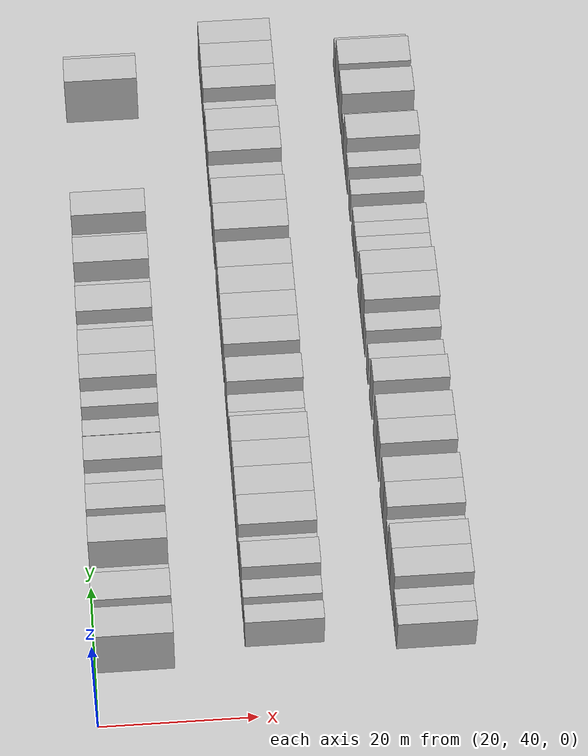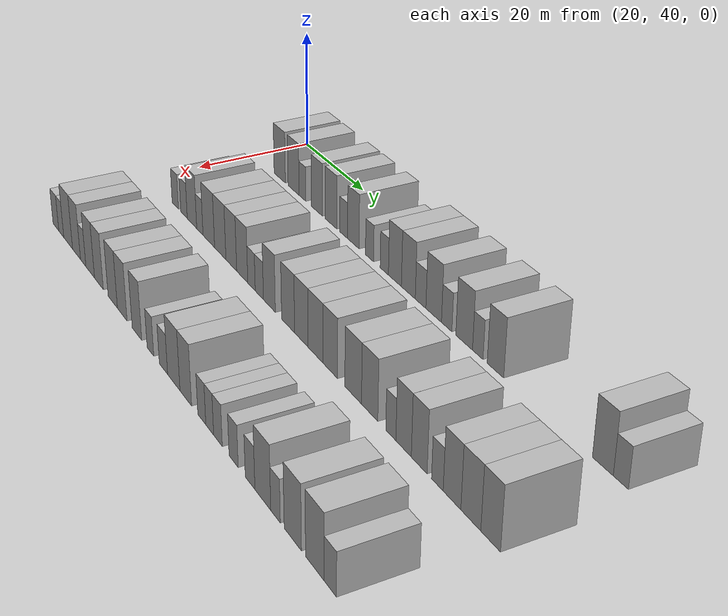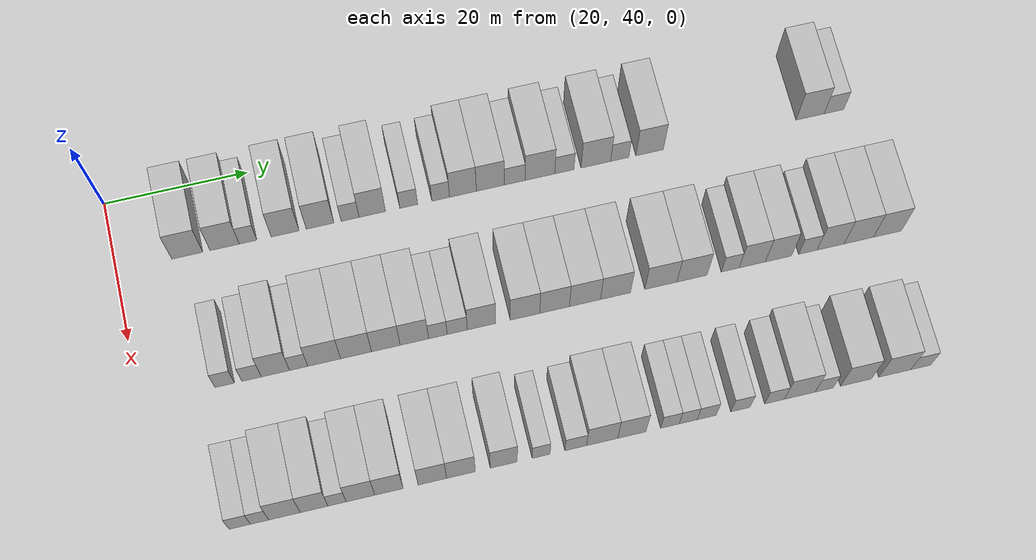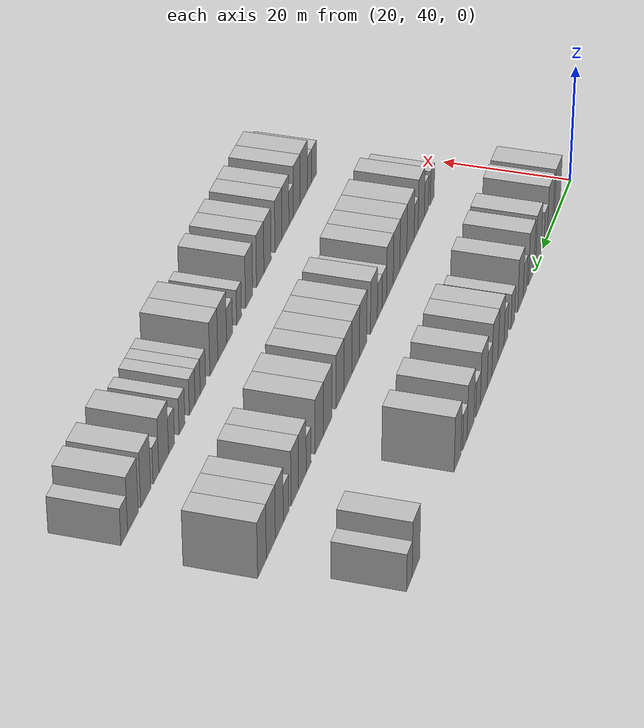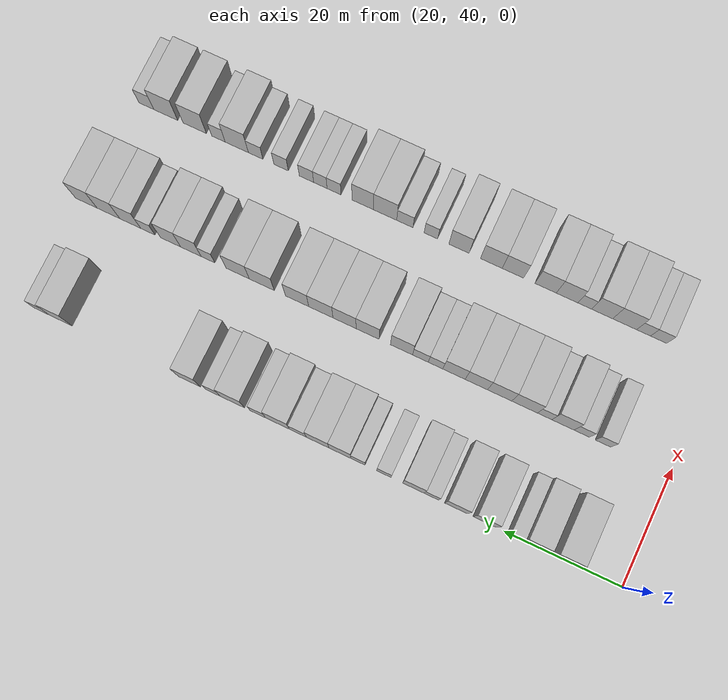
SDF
<sdf version="1.6">
 <world name="default">
  <model name="building_65">
   <static>1</static>
   <pose>25.0000 49.7937 0 0.000000 0.000000 0.000000</pose>
   <link name="link">
    <pose>0 0 4.50 0 0 0</pose>
    <collision name="collision"><geometry><box><size>10.0000 4.2686 9.0000</size></box></geometry></collision>
    <visual name="visual">
     <cast_shadows>0</cast_shadows>
     <geometry><box><size>10.0000 4.2686 9.0000</size></box></geometry>
     <material>
      <script>
       <uri>model://HANNAS_wall/materials/scripts</uri>
       <uri>model://HANNAS_wall/materials/textures</uri>
       <name>vrc/HANNAS_wall</name>
      </script>
     </material>
    </visual>
   </link>
  </model>
  <model name="building_66">
   <static>1</static>
   <pose>25.0000 54.9420 0 0.000000 0.000000 0.000000</pose>
   <link name="link">
    <pose>0 0 4.50 0 0 0</pose>
    <collision name="collision"><geometry><box><size>10.0000 4.0281 9.0000</size></box></geometry></collision>
    <visual name="visual">
     <cast_shadows>0</cast_shadows>
     <geometry><box><size>10.0000 4.0281 9.0000</size></box></geometry>
     <material>
      <script>
       <uri>model://HANNAS_wall/materials/scripts</uri>
       <uri>model://HANNAS_wall/materials/textures</uri>
       <name>vrc/HANNAS_wall</name>
      </script>
     </material>
    </visual>
   </link>
  </model>
  <model name="building_67">
   <static>1</static>
   <pose>25.0000 58.1628 0 0.000000 0.000000 0.000000</pose>
   <link name="link">
    <pose>0 0 3.00 0 0 0</pose>
    <collision name="collision"><geometry><box><size>10.0000 2.4135 6.0000</size></box></geometry></collision>
    <visual name="visual">
     <cast_shadows>0</cast_shadows>
     <geometry><box><size>10.0000 2.4135 6.0000</size></box></geometry>
     <material>
      <script>
       <uri>model://HANNAS_wall/materials/scripts</uri>
       <uri>model://HANNAS_wall/materials/textures</uri>
       <name>vrc/HANNAS_wall</name>
      </script>
     </material>
    </visual>
   </link>
  </model>
  <model name="building_68">
   <static>1</static>
   <pose>25.0000 63.2916 0 0.000000 0.000000 0.000000</pose>
   <link name="link">
    <pose>0 0 4.50 0 0 0</pose>
    <collision name="collision"><geometry><box><size>10.0000 3.8443 9.0000</size></box></geometry></collision>
    <visual name="visual">
     <cast_shadows>0</cast_shadows>
     <geometry><box><size>10.0000 3.8443 9.0000</size></box></geometry>
     <material>
      <script>
       <uri>model://HANNAS_wall/materials/scripts</uri>
       <uri>model://HANNAS_wall/materials/textures</uri>
       <name>vrc/HANNAS_wall</name>
      </script>
     </material>
    </visual>
   </link>
  </model>
  <model name="building_69">
   <static>1</static>
   <pose>25.0000 68.1384 0 0.000000 0.000000 0.000000</pose>
   <link name="link">
    <pose>0 0 4.50 0 0 0</pose>
    <collision name="collision"><geometry><box><size>10.0000 3.8493 9.0000</size></box></geometry></collision>
    <visual name="visual">
     <cast_shadows>0</cast_shadows>
     <geometry><box><size>10.0000 3.8493 9.0000</size></box></geometry>
     <material>
      <script>
       <uri>model://HANNAS_wall/materials/scripts</uri>
       <uri>model://HANNAS_wall/materials/textures</uri>
       <name>vrc/HANNAS_wall</name>
      </script>
     </material>
    </visual>
   </link>
  </model>
  <model name="building_70">
   <static>1</static>
   <pose>25.0000 72.3143 0 0.000000 0.000000 0.000000</pose>
   <link name="link">
    <pose>0 0 3.00 0 0 0</pose>
    <collision name="collision"><geometry><box><size>10.0000 2.5026 6.0000</size></box></geometry></collision>
    <visual name="visual">
     <cast_shadows>0</cast_shadows>
     <geometry><box><size>10.0000 2.5026 6.0000</size></box></geometry>
     <material>
      <script>
       <uri>model://HANNAS_wall/materials/scripts</uri>
       <uri>model://HANNAS_wall/materials/textures</uri>
       <name>vrc/HANNAS_wall</name>
      </script>
     </material>
    </visual>
   </link>
  </model>
  <model name="building_71">
   <static>1</static>
   <pose>25.0000 75.4090 0 0.000000 0.000000 0.000000</pose>
   <link name="link">
    <pose>0 0 4.50 0 0 0</pose>
    <collision name="collision"><geometry><box><size>10.0000 3.6867 9.0000</size></box></geometry></collision>
    <visual name="visual">
     <cast_shadows>0</cast_shadows>
     <geometry><box><size>10.0000 3.6867 9.0000</size></box></geometry>
     <material>
      <script>
       <uri>model://HANNAS_wall/materials/scripts</uri>
       <uri>model://HANNAS_wall/materials/textures</uri>
       <name>vrc/HANNAS_wall</name>
      </script>
     </material>
    </visual>
   </link>
  </model>
  <model name="building_72">
   <static>1</static>
   <pose>25.0000 80.4976 0 0.000000 0.000000 0.000000</pose>
   <link name="link">
    <pose>0 0 3.00 0 0 0</pose>
    <collision name="collision"><geometry><box><size>10.0000 2.4904 6.0000</size></box></geometry></collision>
    <visual name="visual">
     <cast_shadows>0</cast_shadows>
     <geometry><box><size>10.0000 2.4904 6.0000</size></box></geometry>
     <material>
      <script>
       <uri>model://HANNAS_wall/materials/scripts</uri>
       <uri>model://HANNAS_wall/materials/textures</uri>
       <name>vrc/HANNAS_wall</name>
      </script>
     </material>
    </visual>
   </link>
  </model>
  <model name="building_73">
   <static>1</static>
   <pose>25.0000 84.9748 0 0.000000 0.000000 0.000000</pose>
   <link name="link">
    <pose>0 0 3.00 0 0 0</pose>
    <collision name="collision"><geometry><box><size>10.0000 2.4641 6.0000</size></box></geometry></collision>
    <visual name="visual">
     <cast_shadows>0</cast_shadows>
     <geometry><box><size>10.0000 2.4641 6.0000</size></box></geometry>
     <material>
      <script>
       <uri>model://HANNAS_wall/materials/scripts</uri>
       <uri>model://HANNAS_wall/materials/textures</uri>
       <name>vrc/HANNAS_wall</name>
      </script>
     </material>
    </visual>
   </link>
  </model>
  <model name="building_74">
   <static>1</static>
   <pose>25.0000 88.0929 0 0.000000 0.000000 0.000000</pose>
   <link name="link">
    <pose>0 0 4.50 0 0 0</pose>
    <collision name="collision"><geometry><box><size>10.0000 3.7721 9.0000</size></box></geometry></collision>
    <visual name="visual">
     <cast_shadows>0</cast_shadows>
     <geometry><box><size>10.0000 3.7721 9.0000</size></box></geometry>
     <material>
      <script>
       <uri>model://HANNAS_wall/materials/scripts</uri>
       <uri>model://HANNAS_wall/materials/textures</uri>
       <name>vrc/HANNAS_wall</name>
      </script>
     </material>
    </visual>
   </link>
  </model>
  <model name="building_75">
   <static>1</static>
   <pose>25.0000 91.9457 0 0.000000 0.000000 0.000000</pose>
   <link name="link">
    <pose>0 0 4.50 0 0 0</pose>
    <collision name="collision"><geometry><box><size>10.0000 3.9336 9.0000</size></box></geometry></collision>
    <visual name="visual">
     <cast_shadows>0</cast_shadows>
     <geometry><box><size>10.0000 3.9336 9.0000</size></box></geometry>
     <material>
      <script>
       <uri>model://HANNAS_wall/materials/scripts</uri>
       <uri>model://HANNAS_wall/materials/textures</uri>
       <name>vrc/HANNAS_wall</name>
      </script>
     </material>
    </visual>
   </link>
  </model>
  <model name="building_76">
   <static>1</static>
   <pose>25.0000 95.3785 0 0.000000 0.000000 0.000000</pose>
   <link name="link">
    <pose>0 0 3.00 0 0 0</pose>
    <collision name="collision"><geometry><box><size>10.0000 2.9320 6.0000</size></box></geometry></collision>
    <visual name="visual">
     <cast_shadows>0</cast_shadows>
     <geometry><box><size>10.0000 2.9320 6.0000</size></box></geometry>
     <material>
      <script>
       <uri>model://HANNAS_wall/materials/scripts</uri>
       <uri>model://HANNAS_wall/materials/textures</uri>
       <name>vrc/HANNAS_wall</name>
      </script>
     </material>
    </visual>
   </link>
  </model>
  <model name="building_77">
   <static>1</static>
   <pose>25.0000 98.9359 0 0.000000 0.000000 0.000000</pose>
   <link name="link">
    <pose>0 0 4.50 0 0 0</pose>
    <collision name="collision"><geometry><box><size>10.0000 4.1828 9.0000</size></box></geometry></collision>
    <visual name="visual">
     <cast_shadows>0</cast_shadows>
     <geometry><box><size>10.0000 4.1828 9.0000</size></box></geometry>
     <material>
      <script>
       <uri>model://HANNAS_wall/materials/scripts</uri>
       <uri>model://HANNAS_wall/materials/textures</uri>
       <name>vrc/HANNAS_wall</name>
      </script>
     </material>
    </visual>
   </link>
  </model>
  <model name="building_78">
   <static>1</static>
   <pose>25.0000 102.3934 0 0.000000 0.000000 0.000000</pose>
   <link name="link">
    <pose>0 0 3.00 0 0 0</pose>
    <collision name="collision"><geometry><box><size>10.0000 2.7321 6.0000</size></box></geometry></collision>
    <visual name="visual">
     <cast_shadows>0</cast_shadows>
     <geometry><box><size>10.0000 2.7321 6.0000</size></box></geometry>
     <material>
      <script>
       <uri>model://HANNAS_wall/materials/scripts</uri>
       <uri>model://HANNAS_wall/materials/textures</uri>
       <name>vrc/HANNAS_wall</name>
      </script>
     </material>
    </visual>
   </link>
  </model>
  <model name="building_79">
   <static>1</static>
   <pose>25.0000 106.8667 0 0.000000 0.000000 0.000000</pose>
   <link name="link">
    <pose>0 0 4.50 0 0 0</pose>
    <collision name="collision"><geometry><box><size>10.0000 4.2146 9.0000</size></box></geometry></collision>
    <visual name="visual">
     <cast_shadows>0</cast_shadows>
     <geometry><box><size>10.0000 4.2146 9.0000</size></box></geometry>
     <material>
      <script>
       <uri>model://HANNAS_wall/materials/scripts</uri>
       <uri>model://HANNAS_wall/materials/textures</uri>
       <name>vrc/HANNAS_wall</name>
      </script>
     </material>
    </visual>
   </link>
  </model>
  <model name="building_80">
   <static>1</static>
   <pose>25.0000 110.2658 0 0.000000 0.000000 0.000000</pose>
   <link name="link">
    <pose>0 0 3.00 0 0 0</pose>
    <collision name="collision"><geometry><box><size>10.0000 2.5836 6.0000</size></box></geometry></collision>
    <visual name="visual">
     <cast_shadows>0</cast_shadows>
     <geometry><box><size>10.0000 2.5836 6.0000</size></box></geometry>
     <material>
      <script>
       <uri>model://HANNAS_wall/materials/scripts</uri>
       <uri>model://HANNAS_wall/materials/textures</uri>
       <name>vrc/HANNAS_wall</name>
      </script>
     </material>
    </visual>
   </link>
  </model>
  <model name="building_81">
   <static>1</static>
   <pose>25.0000 114.5199 0 0.000000 0.000000 0.000000</pose>
   <link name="link">
    <pose>0 0 4.50 0 0 0</pose>
    <collision name="collision"><geometry><box><size>10.0000 3.9246 9.0000</size></box></geometry></collision>
    <visual name="visual">
     <cast_shadows>0</cast_shadows>
     <geometry><box><size>10.0000 3.9246 9.0000</size></box></geometry>
     <material>
      <script>
       <uri>model://HANNAS_wall/materials/scripts</uri>
       <uri>model://HANNAS_wall/materials/textures</uri>
       <name>vrc/HANNAS_wall</name>
      </script>
     </material>
    </visual>
   </link>
  </model>
  <model name="building_82">
   <static>1</static>
   <pose>25.0000 137.5602 0 0.000000 0.000000 0.000000</pose>
   <link name="link">
    <pose>0 0 4.50 0 0 0</pose>
    <collision name="collision"><geometry><box><size>10.0000 4.0520 9.0000</size></box></geometry></collision>
    <visual name="visual">
     <cast_shadows>0</cast_shadows>
     <geometry><box><size>10.0000 4.0520 9.0000</size></box></geometry>
     <material>
      <script>
       <uri>model://HANNAS_wall/materials/scripts</uri>
       <uri>model://HANNAS_wall/materials/textures</uri>
       <name>vrc/HANNAS_wall</name>
      </script>
     </material>
    </visual>
   </link>
  </model>
  <model name="building_83">
   <static>1</static>
   <pose>25.0000 141.0171 0 0.000000 0.000000 0.000000</pose>
   <link name="link">
    <pose>0 0 3.00 0 0 0</pose>
    <collision name="collision"><geometry><box><size>10.0000 2.8619 6.0000</size></box></geometry></collision>
    <visual name="visual">
     <cast_shadows>0</cast_shadows>
     <geometry><box><size>10.0000 2.8619 6.0000</size></box></geometry>
     <material>
      <script>
       <uri>model://HANNAS_wall/materials/scripts</uri>
       <uri>model://HANNAS_wall/materials/textures</uri>
       <name>vrc/HANNAS_wall</name>
      </script>
     </material>
    </visual>
   </link>
  </model>
  <model name="building_164">
   <static>1</static>
   <pose>44.0000 51.3973 0 0.000000 0.000000 0.000000</pose>
   <link name="link">
    <pose>0 0 3.00 0 0 0</pose>
    <collision name="collision"><geometry><box><size>10.0000 2.6188 6.0000</size></box></geometry></collision>
    <visual name="visual">
     <cast_shadows>0</cast_shadows>
     <geometry><box><size>10.0000 2.6188 6.0000</size></box></geometry>
     <material>
      <script>
       <uri>model://HANNAS_wall/materials/scripts</uri>
       <uri>model://HANNAS_wall/materials/textures</uri>
       <name>vrc/HANNAS_wall</name>
      </script>
     </material>
    </visual>
   </link>
  </model>
  <model name="building_165">
   <static>1</static>
   <pose>44.0000 55.0217 0 0.000000 0.000000 0.000000</pose>
   <link name="link">
    <pose>0 0 3.00 0 0 0</pose>
    <collision name="collision"><geometry><box><size>10.0000 2.6300 6.0000</size></box></geometry></collision>
    <visual name="visual">
     <cast_shadows>0</cast_shadows>
     <geometry><box><size>10.0000 2.6300 6.0000</size></box></geometry>
     <material>
      <script>
       <uri>model://HANNAS_wall/materials/scripts</uri>
       <uri>model://HANNAS_wall/materials/textures</uri>
       <name>vrc/HANNAS_wall</name>
      </script>
     </material>
    </visual>
   </link>
  </model>
  <model name="building_166">
   <static>1</static>
   <pose>44.0000 58.2361 0 0.000000 0.000000 0.000000</pose>
   <link name="link">
    <pose>0 0 4.50 0 0 0</pose>
    <collision name="collision"><geometry><box><size>10.0000 3.7986 9.0000</size></box></geometry></collision>
    <visual name="visual">
     <cast_shadows>0</cast_shadows>
     <geometry><box><size>10.0000 3.7986 9.0000</size></box></geometry>
     <material>
      <script>
       <uri>model://HANNAS_wall/materials/scripts</uri>
       <uri>model://HANNAS_wall/materials/textures</uri>
       <name>vrc/HANNAS_wall</name>
      </script>
     </material>
    </visual>
   </link>
  </model>
  <model name="building_167">
   <static>1</static>
   <pose>44.0000 61.3691 0 0.000000 0.000000 0.000000</pose>
   <link name="link">
    <pose>0 0 3.00 0 0 0</pose>
    <collision name="collision"><geometry><box><size>10.0000 2.4675 6.0000</size></box></geometry></collision>
    <visual name="visual">
     <cast_shadows>0</cast_shadows>
     <geometry><box><size>10.0000 2.4675 6.0000</size></box></geometry>
     <material>
      <script>
       <uri>model://HANNAS_wall/materials/scripts</uri>
       <uri>model://HANNAS_wall/materials/textures</uri>
       <name>vrc/HANNAS_wall</name>
      </script>
     </material>
    </visual>
   </link>
  </model>
  <model name="building_168">
   <static>1</static>
   <pose>44.0000 64.8277 0 0.000000 0.000000 0.000000</pose>
   <link name="link">
    <pose>0 0 4.50 0 0 0</pose>
    <collision name="collision"><geometry><box><size>10.0000 4.4498 9.0000</size></box></geometry></collision>
    <visual name="visual">
     <cast_shadows>0</cast_shadows>
     <geometry><box><size>10.0000 4.4498 9.0000</size></box></geometry>
     <material>
      <script>
       <uri>model://HANNAS_wall/materials/scripts</uri>
       <uri>model://HANNAS_wall/materials/textures</uri>
       <name>vrc/HANNAS_wall</name>
      </script>
     </material>
    </visual>
   </link>
  </model>
  <model name="building_169">
   <static>1</static>
   <pose>44.0000 69.1549 0 0.000000 0.000000 0.000000</pose>
   <link name="link">
    <pose>0 0 4.50 0 0 0</pose>
    <collision name="collision"><geometry><box><size>10.0000 4.2045 9.0000</size></box></geometry></collision>
    <visual name="visual">
     <cast_shadows>0</cast_shadows>
     <geometry><box><size>10.0000 4.2045 9.0000</size></box></geometry>
     <material>
      <script>
       <uri>model://HANNAS_wall/materials/scripts</uri>
       <uri>model://HANNAS_wall/materials/textures</uri>
       <name>vrc/HANNAS_wall</name>
      </script>
     </material>
    </visual>
   </link>
  </model>
  <model name="building_170">
   <static>1</static>
   <pose>44.0000 73.2034 0 0.000000 0.000000 0.000000</pose>
   <link name="link">
    <pose>0 0 4.50 0 0 0</pose>
    <collision name="collision"><geometry><box><size>10.0000 3.8925 9.0000</size></box></geometry></collision>
    <visual name="visual">
     <cast_shadows>0</cast_shadows>
     <geometry><box><size>10.0000 3.8925 9.0000</size></box></geometry>
     <material>
      <script>
       <uri>model://HANNAS_wall/materials/scripts</uri>
       <uri>model://HANNAS_wall/materials/textures</uri>
       <name>vrc/HANNAS_wall</name>
      </script>
     </material>
    </visual>
   </link>
  </model>
  <model name="building_171">
   <static>1</static>
   <pose>44.0000 77.0938 0 0.000000 0.000000 0.000000</pose>
   <link name="link">
    <pose>0 0 4.50 0 0 0</pose>
    <collision name="collision"><geometry><box><size>10.0000 3.8883 9.0000</size></box></geometry></collision>
    <visual name="visual">
     <cast_shadows>0</cast_shadows>
     <geometry><box><size>10.0000 3.8883 9.0000</size></box></geometry>
     <material>
      <script>
       <uri>model://HANNAS_wall/materials/scripts</uri>
       <uri>model://HANNAS_wall/materials/textures</uri>
       <name>vrc/HANNAS_wall</name>
      </script>
     </material>
    </visual>
   </link>
  </model>
  <model name="building_172">
   <static>1</static>
   <pose>44.0000 80.3090 0 0.000000 0.000000 0.000000</pose>
   <link name="link">
    <pose>0 0 3.00 0 0 0</pose>
    <collision name="collision"><geometry><box><size>10.0000 2.5421 6.0000</size></box></geometry></collision>
    <visual name="visual">
     <cast_shadows>0</cast_shadows>
     <geometry><box><size>10.0000 2.5421 6.0000</size></box></geometry>
     <material>
      <script>
       <uri>model://HANNAS_wall/materials/scripts</uri>
       <uri>model://HANNAS_wall/materials/textures</uri>
       <name>vrc/HANNAS_wall</name>
      </script>
     </material>
    </visual>
   </link>
  </model>
  <model name="building_173">
   <static>1</static>
   <pose>44.0000 82.9582 0 0.000000 0.000000 0.000000</pose>
   <link name="link">
    <pose>0 0 3.00 0 0 0</pose>
    <collision name="collision"><geometry><box><size>10.0000 2.7562 6.0000</size></box></geometry></collision>
    <visual name="visual">
     <cast_shadows>0</cast_shadows>
     <geometry><box><size>10.0000 2.7562 6.0000</size></box></geometry>
     <material>
      <script>
       <uri>model://HANNAS_wall/materials/scripts</uri>
       <uri>model://HANNAS_wall/materials/textures</uri>
       <name>vrc/HANNAS_wall</name>
      </script>
     </material>
    </visual>
   </link>
  </model>
  <model name="building_174">
   <static>1</static>
   <pose>44.0000 86.2867 0 0.000000 0.000000 0.000000</pose>
   <link name="link">
    <pose>0 0 4.50 0 0 0</pose>
    <collision name="collision"><geometry><box><size>10.0000 3.9007 9.0000</size></box></geometry></collision>
    <visual name="visual">
     <cast_shadows>0</cast_shadows>
     <geometry><box><size>10.0000 3.9007 9.0000</size></box></geometry>
     <material>
      <script>
       <uri>model://HANNAS_wall/materials/scripts</uri>
       <uri>model://HANNAS_wall/materials/textures</uri>
       <name>vrc/HANNAS_wall</name>
      </script>
     </material>
    </visual>
   </link>
  </model>
  <model name="building_175">
   <static>1</static>
   <pose>44.0000 92.2650 0 0.000000 0.000000 0.000000</pose>
   <link name="link">
    <pose>0 0 4.50 0 0 0</pose>
    <collision name="collision"><geometry><box><size>10.0000 4.0559 9.0000</size></box></geometry></collision>
    <visual name="visual">
     <cast_shadows>0</cast_shadows>
     <geometry><box><size>10.0000 4.0559 9.0000</size></box></geometry>
     <material>
      <script>
       <uri>model://HANNAS_wall/materials/scripts</uri>
       <uri>model://HANNAS_wall/materials/textures</uri>
       <name>vrc/HANNAS_wall</name>
      </script>
     </material>
    </visual>
   </link>
  </model>
  <model name="building_176">
   <static>1</static>
   <pose>44.0000 96.3373 0 0.000000 0.000000 0.000000</pose>
   <link name="link">
    <pose>0 0 4.50 0 0 0</pose>
    <collision name="collision"><geometry><box><size>10.0000 4.0887 9.0000</size></box></geometry></collision>
    <visual name="visual">
     <cast_shadows>0</cast_shadows>
     <geometry><box><size>10.0000 4.0887 9.0000</size></box></geometry>
     <material>
      <script>
       <uri>model://HANNAS_wall/materials/scripts</uri>
       <uri>model://HANNAS_wall/materials/textures</uri>
       <name>vrc/HANNAS_wall</name>
      </script>
     </material>
    </visual>
   </link>
  </model>
  <model name="building_177">
   <static>1</static>
   <pose>44.0000 100.5340 0 0.000000 0.000000 0.000000</pose>
   <link name="link">
    <pose>0 0 4.50 0 0 0</pose>
    <collision name="collision"><geometry><box><size>10.0000 4.3049 9.0000</size></box></geometry></collision>
    <visual name="visual">
     <cast_shadows>0</cast_shadows>
     <geometry><box><size>10.0000 4.3049 9.0000</size></box></geometry>
     <material>
      <script>
       <uri>model://HANNAS_wall/materials/scripts</uri>
       <uri>model://HANNAS_wall/materials/textures</uri>
       <name>vrc/HANNAS_wall</name>
      </script>
     </material>
    </visual>
   </link>
  </model>
  <model name="building_178">
   <static>1</static>
   <pose>44.0000 104.7694 0 0.000000 0.000000 0.000000</pose>
   <link name="link">
    <pose>0 0 4.50 0 0 0</pose>
    <collision name="collision"><geometry><box><size>10.0000 4.1659 9.0000</size></box></geometry></collision>
    <visual name="visual">
     <cast_shadows>0</cast_shadows>
     <geometry><box><size>10.0000 4.1659 9.0000</size></box></geometry>
     <material>
      <script>
       <uri>model://HANNAS_wall/materials/scripts</uri>
       <uri>model://HANNAS_wall/materials/textures</uri>
       <name>vrc/HANNAS_wall</name>
      </script>
     </material>
    </visual>
   </link>
  </model>
  <model name="building_179">
   <static>1</static>
   <pose>44.0000 111.0793 0 0.000000 0.000000 0.000000</pose>
   <link name="link">
    <pose>0 0 4.50 0 0 0</pose>
    <collision name="collision"><geometry><box><size>10.0000 4.4539 9.0000</size></box></geometry></collision>
    <visual name="visual">
     <cast_shadows>0</cast_shadows>
     <geometry><box><size>10.0000 4.4539 9.0000</size></box></geometry>
     <material>
      <script>
       <uri>model://HANNAS_wall/materials/scripts</uri>
       <uri>model://HANNAS_wall/materials/textures</uri>
       <name>vrc/HANNAS_wall</name>
      </script>
     </material>
    </visual>
   </link>
  </model>
  <model name="building_180">
   <static>1</static>
   <pose>44.0000 115.4142 0 0.000000 0.000000 0.000000</pose>
   <link name="link">
    <pose>0 0 4.50 0 0 0</pose>
    <collision name="collision"><geometry><box><size>10.0000 4.2160 9.0000</size></box></geometry></collision>
    <visual name="visual">
     <cast_shadows>0</cast_shadows>
     <geometry><box><size>10.0000 4.2160 9.0000</size></box></geometry>
     <material>
      <script>
       <uri>model://HANNAS_wall/materials/scripts</uri>
       <uri>model://HANNAS_wall/materials/textures</uri>
       <name>vrc/HANNAS_wall</name>
      </script>
     </material>
    </visual>
   </link>
  </model>
  <model name="building_181">
   <static>1</static>
   <pose>44.0000 120.7664 0 0.000000 0.000000 0.000000</pose>
   <link name="link">
    <pose>0 0 3.00 0 0 0</pose>
    <collision name="collision"><geometry><box><size>10.0000 2.4884 6.0000</size></box></geometry></collision>
    <visual name="visual">
     <cast_shadows>0</cast_shadows>
     <geometry><box><size>10.0000 2.4884 6.0000</size></box></geometry>
     <material>
      <script>
       <uri>model://HANNAS_wall/materials/scripts</uri>
       <uri>model://HANNAS_wall/materials/textures</uri>
       <name>vrc/HANNAS_wall</name>
      </script>
     </material>
    </visual>
   </link>
  </model>
  <model name="building_182">
   <static>1</static>
   <pose>44.0000 123.8601 0 0.000000 0.000000 0.000000</pose>
   <link name="link">
    <pose>0 0 4.50 0 0 0</pose>
    <collision name="collision"><geometry><box><size>10.0000 3.6990 9.0000</size></box></geometry></collision>
    <visual name="visual">
     <cast_shadows>0</cast_shadows>
     <geometry><box><size>10.0000 3.6990 9.0000</size></box></geometry>
     <material>
      <script>
       <uri>model://HANNAS_wall/materials/scripts</uri>
       <uri>model://HANNAS_wall/materials/textures</uri>
       <name>vrc/HANNAS_wall</name>
      </script>
     </material>
    </visual>
   </link>
  </model>
  <model name="building_183">
   <static>1</static>
   <pose>44.0000 127.5474 0 0.000000 0.000000 0.000000</pose>
   <link name="link">
    <pose>0 0 4.50 0 0 0</pose>
    <collision name="collision"><geometry><box><size>10.0000 3.6757 9.0000</size></box></geometry></collision>
    <visual name="visual">
     <cast_shadows>0</cast_shadows>
     <geometry><box><size>10.0000 3.6757 9.0000</size></box></geometry>
     <material>
      <script>
       <uri>model://HANNAS_wall/materials/scripts</uri>
       <uri>model://HANNAS_wall/materials/textures</uri>
       <name>vrc/HANNAS_wall</name>
      </script>
     </material>
    </visual>
   </link>
  </model>
  <model name="building_184">
   <static>1</static>
   <pose>44.0000 131.6882 0 0.000000 0.000000 0.000000</pose>
   <link name="link">
    <pose>0 0 3.00 0 0 0</pose>
    <collision name="collision"><geometry><box><size>10.0000 2.6058 6.0000</size></box></geometry></collision>
    <visual name="visual">
     <cast_shadows>0</cast_shadows>
     <geometry><box><size>10.0000 2.6058 6.0000</size></box></geometry>
     <material>
      <script>
       <uri>model://HANNAS_wall/materials/scripts</uri>
       <uri>model://HANNAS_wall/materials/textures</uri>
       <name>vrc/HANNAS_wall</name>
      </script>
     </material>
    </visual>
   </link>
  </model>
  <model name="building_185">
   <static>1</static>
   <pose>44.0000 134.9038 0 0.000000 0.000000 0.000000</pose>
   <link name="link">
    <pose>0 0 4.50 0 0 0</pose>
    <collision name="collision"><geometry><box><size>10.0000 3.8254 9.0000</size></box></geometry></collision>
    <visual name="visual">
     <cast_shadows>0</cast_shadows>
     <geometry><box><size>10.0000 3.8254 9.0000</size></box></geometry>
     <material>
      <script>
       <uri>model://HANNAS_wall/materials/scripts</uri>
       <uri>model://HANNAS_wall/materials/textures</uri>
       <name>vrc/HANNAS_wall</name>
      </script>
     </material>
    </visual>
   </link>
  </model>
  <model name="building_186">
   <static>1</static>
   <pose>44.0000 138.8974 0 0.000000 0.000000 0.000000</pose>
   <link name="link">
    <pose>0 0 4.50 0 0 0</pose>
    <collision name="collision"><geometry><box><size>10.0000 4.1617 9.0000</size></box></geometry></collision>
    <visual name="visual">
     <cast_shadows>0</cast_shadows>
     <geometry><box><size>10.0000 4.1617 9.0000</size></box></geometry>
     <material>
      <script>
       <uri>model://HANNAS_wall/materials/scripts</uri>
       <uri>model://HANNAS_wall/materials/textures</uri>
       <name>vrc/HANNAS_wall</name>
      </script>
     </material>
    </visual>
   </link>
  </model>
  <model name="building_187">
   <static>1</static>
   <pose>44.0000 142.9604 0 0.000000 0.000000 0.000000</pose>
   <link name="link">
    <pose>0 0 4.50 0 0 0</pose>
    <collision name="collision"><geometry><box><size>10.0000 3.9643 9.0000</size></box></geometry></collision>
    <visual name="visual">
     <cast_shadows>0</cast_shadows>
     <geometry><box><size>10.0000 3.9643 9.0000</size></box></geometry>
     <material>
      <script>
       <uri>model://HANNAS_wall/materials/scripts</uri>
       <uri>model://HANNAS_wall/materials/textures</uri>
       <name>vrc/HANNAS_wall</name>
      </script>
     </material>
    </visual>
   </link>
  </model>
  <model name="building_286">
   <static>1</static>
   <pose>63.0000 49.8233 0 0.000000 0.000000 0.000000</pose>
   <link name="link">
    <pose>0 0 3.00 0 0 0</pose>
    <collision name="collision"><geometry><box><size>10.0000 2.7953 6.0000</size></box></geometry></collision>
    <visual name="visual">
     <cast_shadows>0</cast_shadows>
     <geometry><box><size>10.0000 2.7953 6.0000</size></box></geometry>
     <material>
      <script>
       <uri>model://HANNAS_wall/materials/scripts</uri>
       <uri>model://HANNAS_wall/materials/textures</uri>
       <name>vrc/HANNAS_wall</name>
      </script>
     </material>
    </visual>
   </link>
  </model>
  <model name="building_287">
   <static>1</static>
   <pose>63.0000 52.4257 0 0.000000 0.000000 0.000000</pose>
   <link name="link">
    <pose>0 0 3.00 0 0 0</pose>
    <collision name="collision"><geometry><box><size>10.0000 2.4095 6.0000</size></box></geometry></collision>
    <visual name="visual">
     <cast_shadows>0</cast_shadows>
     <geometry><box><size>10.0000 2.4095 6.0000</size></box></geometry>
     <material>
      <script>
       <uri>model://HANNAS_wall/materials/scripts</uri>
       <uri>model://HANNAS_wall/materials/textures</uri>
       <name>vrc/HANNAS_wall</name>
      </script>
     </material>
    </visual>
   </link>
  </model>
  <model name="building_288">
   <static>1</static>
   <pose>63.0000 55.7078 0 0.000000 0.000000 0.000000</pose>
   <link name="link">
    <pose>0 0 4.50 0 0 0</pose>
    <collision name="collision"><geometry><box><size>10.0000 4.1547 9.0000</size></box></geometry></collision>
    <visual name="visual">
     <cast_shadows>0</cast_shadows>
     <geometry><box><size>10.0000 4.1547 9.0000</size></box></geometry>
     <material>
      <script>
       <uri>model://HANNAS_wall/materials/scripts</uri>
       <uri>model://HANNAS_wall/materials/textures</uri>
       <name>vrc/HANNAS_wall</name>
      </script>
     </material>
    </visual>
   </link>
  </model>
  <model name="building_289">
   <static>1</static>
   <pose>63.0000 59.6161 0 0.000000 0.000000 0.000000</pose>
   <link name="link">
    <pose>0 0 4.50 0 0 0</pose>
    <collision name="collision"><geometry><box><size>10.0000 3.6621 9.0000</size></box></geometry></collision>
    <visual name="visual">
     <cast_shadows>0</cast_shadows>
     <geometry><box><size>10.0000 3.6621 9.0000</size></box></geometry>
     <material>
      <script>
       <uri>model://HANNAS_wall/materials/scripts</uri>
       <uri>model://HANNAS_wall/materials/textures</uri>
       <name>vrc/HANNAS_wall</name>
      </script>
     </material>
    </visual>
   </link>
  </model>
  <model name="building_290">
   <static>1</static>
   <pose>63.0000 62.6484 0 0.000000 0.000000 0.000000</pose>
   <link name="link">
    <pose>0 0 3.00 0 0 0</pose>
    <collision name="collision"><geometry><box><size>10.0000 2.4023 6.0000</size></box></geometry></collision>
    <visual name="visual">
     <cast_shadows>0</cast_shadows>
     <geometry><box><size>10.0000 2.4023 6.0000</size></box></geometry>
     <material>
      <script>
       <uri>model://HANNAS_wall/materials/scripts</uri>
       <uri>model://HANNAS_wall/materials/textures</uri>
       <name>vrc/HANNAS_wall</name>
      </script>
     </material>
    </visual>
   </link>
  </model>
  <model name="building_291">
   <static>1</static>
   <pose>63.0000 65.7445 0 0.000000 0.000000 0.000000</pose>
   <link name="link">
    <pose>0 0 4.50 0 0 0</pose>
    <collision name="collision"><geometry><box><size>10.0000 3.7900 9.0000</size></box></geometry></collision>
    <visual name="visual">
     <cast_shadows>0</cast_shadows>
     <geometry><box><size>10.0000 3.7900 9.0000</size></box></geometry>
     <material>
      <script>
       <uri>model://HANNAS_wall/materials/scripts</uri>
       <uri>model://HANNAS_wall/materials/textures</uri>
       <name>vrc/HANNAS_wall</name>
      </script>
     </material>
    </visual>
   </link>
  </model>
  <model name="building_292">
   <static>1</static>
   <pose>63.0000 69.5217 0 0.000000 0.000000 0.000000</pose>
   <link name="link">
    <pose>0 0 4.50 0 0 0</pose>
    <collision name="collision"><geometry><box><size>10.0000 3.7644 9.0000</size></box></geometry></collision>
    <visual name="visual">
     <cast_shadows>0</cast_shadows>
     <geometry><box><size>10.0000 3.7644 9.0000</size></box></geometry>
     <material>
      <script>
       <uri>model://HANNAS_wall/materials/scripts</uri>
       <uri>model://HANNAS_wall/materials/textures</uri>
       <name>vrc/HANNAS_wall</name>
      </script>
     </material>
    </visual>
   </link>
  </model>
  <model name="building_293">
   <static>1</static>
   <pose>63.0000 75.2978 0 0.000000 0.000000 0.000000</pose>
   <link name="link">
    <pose>0 0 4.50 0 0 0</pose>
    <collision name="collision"><geometry><box><size>10.0000 3.7879 9.0000</size></box></geometry></collision>
    <visual name="visual">
     <cast_shadows>0</cast_shadows>
     <geometry><box><size>10.0000 3.7879 9.0000</size></box></geometry>
     <material>
      <script>
       <uri>model://HANNAS_wall/materials/scripts</uri>
       <uri>model://HANNAS_wall/materials/textures</uri>
       <name>vrc/HANNAS_wall</name>
      </script>
     </material>
    </visual>
   </link>
  </model>
  <model name="building_294">
   <static>1</static>
   <pose>63.0000 79.1143 0 0.000000 0.000000 0.000000</pose>
   <link name="link">
    <pose>0 0 4.50 0 0 0</pose>
    <collision name="collision"><geometry><box><size>10.0000 3.8450 9.0000</size></box></geometry></collision>
    <visual name="visual">
     <cast_shadows>0</cast_shadows>
     <geometry><box><size>10.0000 3.8450 9.0000</size></box></geometry>
     <material>
      <script>
       <uri>model://HANNAS_wall/materials/scripts</uri>
       <uri>model://HANNAS_wall/materials/textures</uri>
       <name>vrc/HANNAS_wall</name>
      </script>
     </material>
    </visual>
   </link>
  </model>
  <model name="building_295">
   <static>1</static>
   <pose>63.0000 84.8409 0 0.000000 0.000000 0.000000</pose>
   <link name="link">
    <pose>0 0 4.50 0 0 0</pose>
    <collision name="collision"><geometry><box><size>10.0000 3.6084 9.0000</size></box></geometry></collision>
    <visual name="visual">
     <cast_shadows>0</cast_shadows>
     <geometry><box><size>10.0000 3.6084 9.0000</size></box></geometry>
     <material>
      <script>
       <uri>model://HANNAS_wall/materials/scripts</uri>
       <uri>model://HANNAS_wall/materials/textures</uri>
       <name>vrc/HANNAS_wall</name>
      </script>
     </material>
    </visual>
   </link>
  </model>
  <model name="building_296">
   <static>1</static>
   <pose>63.0000 89.8531 0 0.000000 0.000000 0.000000</pose>
   <link name="link">
    <pose>0 0 3.00 0 0 0</pose>
    <collision name="collision"><geometry><box><size>10.0000 2.4160 6.0000</size></box></geometry></collision>
    <visual name="visual">
     <cast_shadows>0</cast_shadows>
     <geometry><box><size>10.0000 2.4160 6.0000</size></box></geometry>
     <material>
      <script>
       <uri>model://HANNAS_wall/materials/scripts</uri>
       <uri>model://HANNAS_wall/materials/textures</uri>
       <name>vrc/HANNAS_wall</name>
      </script>
     </material>
    </visual>
   </link>
  </model>
  <model name="building_297">
   <static>1</static>
   <pose>63.0000 94.5135 0 0.000000 0.000000 0.000000</pose>
   <link name="link">
    <pose>0 0 3.00 0 0 0</pose>
    <collision name="collision"><geometry><box><size>10.0000 2.9050 6.0000</size></box></geometry></collision>
    <visual name="visual">
     <cast_shadows>0</cast_shadows>
     <geometry><box><size>10.0000 2.9050 6.0000</size></box></geometry>
     <material>
      <script>
       <uri>model://HANNAS_wall/materials/scripts</uri>
       <uri>model://HANNAS_wall/materials/textures</uri>
       <name>vrc/HANNAS_wall</name>
      </script>
     </material>
    </visual>
   </link>
  </model>
  <model name="building_298">
   <static>1</static>
   <pose>63.0000 98.0748 0 0.000000 0.000000 0.000000</pose>
   <link name="link">
    <pose>0 0 4.50 0 0 0</pose>
    <collision name="collision"><geometry><box><size>10.0000 4.2176 9.0000</size></box></geometry></collision>
    <visual name="visual">
     <cast_shadows>0</cast_shadows>
     <geometry><box><size>10.0000 4.2176 9.0000</size></box></geometry>
     <material>
      <script>
       <uri>model://HANNAS_wall/materials/scripts</uri>
       <uri>model://HANNAS_wall/materials/textures</uri>
       <name>vrc/HANNAS_wall</name>
      </script>
     </material>
    </visual>
   </link>
  </model>
  <model name="building_299">
   <static>1</static>
   <pose>63.0000 102.0975 0 0.000000 0.000000 0.000000</pose>
   <link name="link">
    <pose>0 0 4.50 0 0 0</pose>
    <collision name="collision"><geometry><box><size>10.0000 3.8278 9.0000</size></box></geometry></collision>
    <visual name="visual">
     <cast_shadows>0</cast_shadows>
     <geometry><box><size>10.0000 3.8278 9.0000</size></box></geometry>
     <material>
      <script>
       <uri>model://HANNAS_wall/materials/scripts</uri>
       <uri>model://HANNAS_wall/materials/textures</uri>
       <name>vrc/HANNAS_wall</name>
      </script>
     </material>
    </visual>
   </link>
  </model>
  <model name="building_300">
   <static>1</static>
   <pose>63.0000 107.2727 0 0.000000 0.000000 0.000000</pose>
   <link name="link">
    <pose>0 0 3.00 0 0 0</pose>
    <collision name="collision"><geometry><box><size>10.0000 2.5228 6.0000</size></box></geometry></collision>
    <visual name="visual">
     <cast_shadows>0</cast_shadows>
     <geometry><box><size>10.0000 2.5228 6.0000</size></box></geometry>
     <material>
      <script>
       <uri>model://HANNAS_wall/materials/scripts</uri>
       <uri>model://HANNAS_wall/materials/textures</uri>
       <name>vrc/HANNAS_wall</name>
      </script>
     </material>
    </visual>
   </link>
  </model>
  <model name="building_301">
   <static>1</static>
   <pose>63.0000 109.7453 0 0.000000 0.000000 0.000000</pose>
   <link name="link">
    <pose>0 0 3.00 0 0 0</pose>
    <collision name="collision"><geometry><box><size>10.0000 2.4223 6.0000</size></box></geometry></collision>
    <visual name="visual">
     <cast_shadows>0</cast_shadows>
     <geometry><box><size>10.0000 2.4223 6.0000</size></box></geometry>
     <material>
      <script>
       <uri>model://HANNAS_wall/materials/scripts</uri>
       <uri>model://HANNAS_wall/materials/textures</uri>
       <name>vrc/HANNAS_wall</name>
      </script>
     </material>
    </visual>
   </link>
  </model>
  <model name="building_302">
   <static>1</static>
   <pose>63.0000 112.2645 0 0.000000 0.000000 0.000000</pose>
   <link name="link">
    <pose>0 0 3.00 0 0 0</pose>
    <collision name="collision"><geometry><box><size>10.0000 2.6161 6.0000</size></box></geometry></collision>
    <visual name="visual">
     <cast_shadows>0</cast_shadows>
     <geometry><box><size>10.0000 2.6161 6.0000</size></box></geometry>
     <material>
      <script>
       <uri>model://HANNAS_wall/materials/scripts</uri>
       <uri>model://HANNAS_wall/materials/textures</uri>
       <name>vrc/HANNAS_wall</name>
      </script>
     </material>
    </visual>
   </link>
  </model>
  <model name="building_303">
   <static>1</static>
   <pose>63.0000 116.8933 0 0.000000 0.000000 0.000000</pose>
   <link name="link">
    <pose>0 0 3.00 0 0 0</pose>
    <collision name="collision"><geometry><box><size>10.0000 2.6415 6.0000</size></box></geometry></collision>
    <visual name="visual">
     <cast_shadows>0</cast_shadows>
     <geometry><box><size>10.0000 2.6415 6.0000</size></box></geometry>
     <material>
      <script>
       <uri>model://HANNAS_wall/materials/scripts</uri>
       <uri>model://HANNAS_wall/materials/textures</uri>
       <name>vrc/HANNAS_wall</name>
      </script>
     </material>
    </visual>
   </link>
  </model>
  <model name="building_304">
   <static>1</static>
   <pose>63.0000 121.5504 0 0.000000 0.000000 0.000000</pose>
   <link name="link">
    <pose>0 0 3.00 0 0 0</pose>
    <collision name="collision"><geometry><box><size>10.0000 2.6727 6.0000</size></box></geometry></collision>
    <visual name="visual">
     <cast_shadows>0</cast_shadows>
     <geometry><box><size>10.0000 2.6727 6.0000</size></box></geometry>
     <material>
      <script>
       <uri>model://HANNAS_wall/materials/scripts</uri>
       <uri>model://HANNAS_wall/materials/textures</uri>
       <name>vrc/HANNAS_wall</name>
      </script>
     </material>
    </visual>
   </link>
  </model>
  <model name="building_305">
   <static>1</static>
   <pose>63.0000 125.0144 0 0.000000 0.000000 0.000000</pose>
   <link name="link">
    <pose>0 0 4.50 0 0 0</pose>
    <collision name="collision"><geometry><box><size>10.0000 4.2555 9.0000</size></box></geometry></collision>
    <visual name="visual">
     <cast_shadows>0</cast_shadows>
     <geometry><box><size>10.0000 4.2555 9.0000</size></box></geometry>
     <material>
      <script>
       <uri>model://HANNAS_wall/materials/scripts</uri>
       <uri>model://HANNAS_wall/materials/textures</uri>
       <name>vrc/HANNAS_wall</name>
      </script>
     </material>
    </visual>
   </link>
  </model>
  <model name="building_306">
   <static>1</static>
   <pose>63.0000 128.3855 0 0.000000 0.000000 0.000000</pose>
   <link name="link">
    <pose>0 0 3.00 0 0 0</pose>
    <collision name="collision"><geometry><box><size>10.0000 2.4866 6.0000</size></box></geometry></collision>
    <visual name="visual">
     <cast_shadows>0</cast_shadows>
     <geometry><box><size>10.0000 2.4866 6.0000</size></box></geometry>
     <material>
      <script>
       <uri>model://HANNAS_wall/materials/scripts</uri>
       <uri>model://HANNAS_wall/materials/textures</uri>
       <name>vrc/HANNAS_wall</name>
      </script>
     </material>
    </visual>
   </link>
  </model>
  <model name="building_307">
   <static>1</static>
   <pose>63.0000 132.7811 0 0.000000 0.000000 0.000000</pose>
   <link name="link">
    <pose>0 0 4.50 0 0 0</pose>
    <collision name="collision"><geometry><box><size>10.0000 4.3046 9.0000</size></box></geometry></collision>
    <visual name="visual">
     <cast_shadows>0</cast_shadows>
     <geometry><box><size>10.0000 4.3046 9.0000</size></box></geometry>
     <material>
      <script>
       <uri>model://HANNAS_wall/materials/scripts</uri>
       <uri>model://HANNAS_wall/materials/textures</uri>
       <name>vrc/HANNAS_wall</name>
      </script>
     </material>
    </visual>
   </link>
  </model>
  <model name="building_308">
   <static>1</static>
   <pose>63.0000 138.1495 0 0.000000 0.000000 0.000000</pose>
   <link name="link">
    <pose>0 0 4.50 0 0 0</pose>
    <collision name="collision"><geometry><box><size>10.0000 4.4322 9.0000</size></box></geometry></collision>
    <visual name="visual">
     <cast_shadows>0</cast_shadows>
     <geometry><box><size>10.0000 4.4322 9.0000</size></box></geometry>
     <material>
      <script>
       <uri>model://HANNAS_wall/materials/scripts</uri>
       <uri>model://HANNAS_wall/materials/textures</uri>
       <name>vrc/HANNAS_wall</name>
      </script>
     </material>
    </visual>
   </link>
  </model>
  <model name="building_309">
   <static>1</static>
   <pose>63.0000 141.7585 0 0.000000 0.000000 0.000000</pose>
   <link name="link">
    <pose>0 0 3.00 0 0 0</pose>
    <collision name="collision"><geometry><box><size>10.0000 2.7858 6.0000</size></box></geometry></collision>
    <visual name="visual">
     <cast_shadows>0</cast_shadows>
     <geometry><box><size>10.0000 2.7858 6.0000</size></box></geometry>
     <material>
      <script>
       <uri>model://HANNAS_wall/materials/scripts</uri>
       <uri>model://HANNAS_wall/materials/textures</uri>
       <name>vrc/HANNAS_wall</name>
      </script>
     </material>
    </visual>
   </link>
  </model>
 </world>
</sdf>
